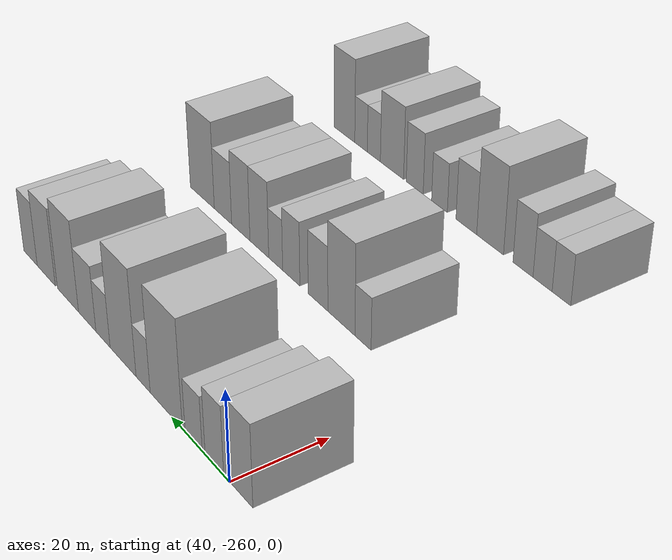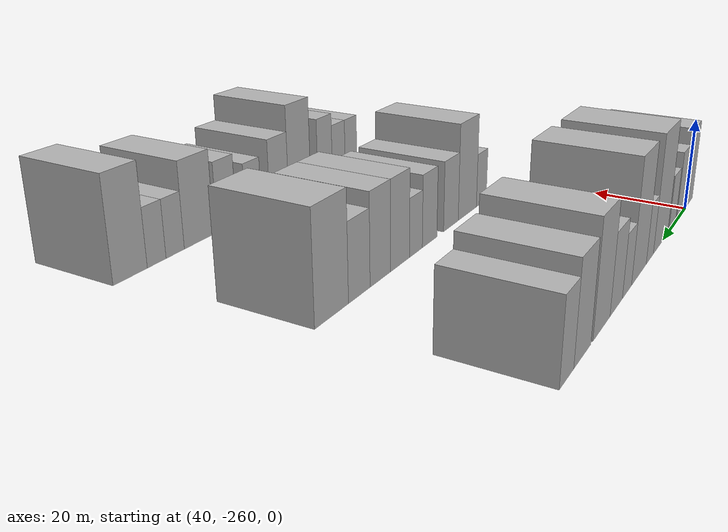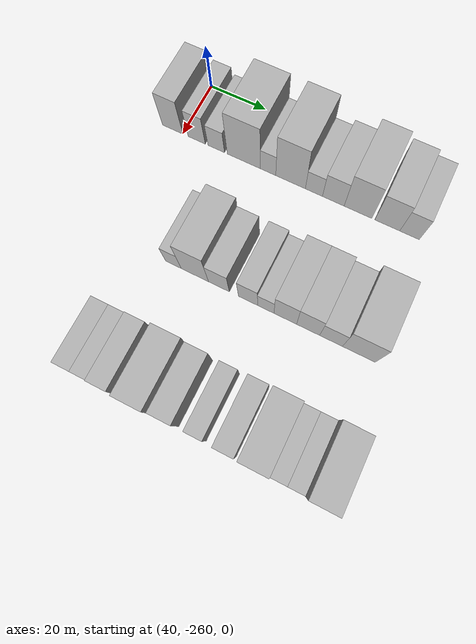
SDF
<sdf version="1.6">
 <world name="default">
  <model name="building_15">
   <static>1</static>
   <pose>50.0000 -263.7044 0 0.000000 0.000000 0.000000</pose>
   <link name="link">
    <pose>0 0 9.00 0 0 0</pose>
    <collision name="collision"><geometry><box><size>20.0000 7.4823 18.0000</size></box></geometry></collision>
    <visual name="visual">
     <cast_shadows>0</cast_shadows>
     <geometry><box><size>20.0000 7.4823 18.0000</size></box></geometry>
     <material>
      <script>
       <uri>model://HANNAS_wall/materials/scripts</uri>
       <uri>model://HANNAS_wall/materials/textures</uri>
       <name>vrc/HANNAS_wall</name>
      </script>
     </material>
    </visual>
   </link>
  </model>
  <model name="building_16">
   <static>1</static>
   <pose>50.0000 -254.8468 0 0.000000 0.000000 0.000000</pose>
   <link name="link">
    <pose>0 0 7.50 0 0 0</pose>
    <collision name="collision"><geometry><box><size>20.0000 6.2329 15.0000</size></box></geometry></collision>
    <visual name="visual">
     <cast_shadows>0</cast_shadows>
     <geometry><box><size>20.0000 6.2329 15.0000</size></box></geometry>
     <material>
      <script>
       <uri>model://HANNAS_wall/materials/scripts</uri>
       <uri>model://HANNAS_wall/materials/textures</uri>
       <name>vrc/HANNAS_wall</name>
      </script>
     </material>
    </visual>
   </link>
  </model>
  <model name="building_17">
   <static>1</static>
   <pose>50.0000 -247.7488 0 0.000000 0.000000 0.000000</pose>
   <link name="link">
    <pose>0 0 6.00 0 0 0</pose>
    <collision name="collision"><geometry><box><size>20.0000 5.9631 12.0000</size></box></geometry></collision>
    <visual name="visual">
     <cast_shadows>0</cast_shadows>
     <geometry><box><size>20.0000 5.9631 12.0000</size></box></geometry>
     <material>
      <script>
       <uri>model://HANNAS_wall/materials/scripts</uri>
       <uri>model://HANNAS_wall/materials/textures</uri>
       <name>vrc/HANNAS_wall</name>
      </script>
     </material>
    </visual>
   </link>
  </model>
  <model name="building_18">
   <static>1</static>
   <pose>50.0000 -237.8741 0 0.000000 0.000000 0.000000</pose>
   <link name="link">
    <pose>0 0 12.00 0 0 0</pose>
    <collision name="collision"><geometry><box><size>20.0000 11.7863 24.0000</size></box></geometry></collision>
    <visual name="visual">
     <cast_shadows>0</cast_shadows>
     <geometry><box><size>20.0000 11.7863 24.0000</size></box></geometry>
     <material>
      <script>
       <uri>model://HANNAS_wall/materials/scripts</uri>
       <uri>model://HANNAS_wall/materials/textures</uri>
       <name>vrc/HANNAS_wall</name>
      </script>
     </material>
    </visual>
   </link>
  </model>
  <model name="building_19">
   <static>1</static>
   <pose>50.0000 -229.2818 0 0.000000 0.000000 0.000000</pose>
   <link name="link">
    <pose>0 0 6.00 0 0 0</pose>
    <collision name="collision"><geometry><box><size>20.0000 5.3983 12.0000</size></box></geometry></collision>
    <visual name="visual">
     <cast_shadows>0</cast_shadows>
     <geometry><box><size>20.0000 5.3983 12.0000</size></box></geometry>
     <material>
      <script>
       <uri>model://HANNAS_wall/materials/scripts</uri>
       <uri>model://HANNAS_wall/materials/textures</uri>
       <name>vrc/HANNAS_wall</name>
      </script>
     </material>
    </visual>
   </link>
  </model>
  <model name="building_20">
   <static>1</static>
   <pose>50.0000 -221.4287 0 0.000000 0.000000 0.000000</pose>
   <link name="link">
    <pose>0 0 12.00 0 0 0</pose>
    <collision name="collision"><geometry><box><size>20.0000 10.3080 24.0000</size></box></geometry></collision>
    <visual name="visual">
     <cast_shadows>0</cast_shadows>
     <geometry><box><size>20.0000 10.3080 24.0000</size></box></geometry>
     <material>
      <script>
       <uri>model://HANNAS_wall/materials/scripts</uri>
       <uri>model://HANNAS_wall/materials/textures</uri>
       <name>vrc/HANNAS_wall</name>
      </script>
     </material>
    </visual>
   </link>
  </model>
  <model name="building_21">
   <static>1</static>
   <pose>50.0000 -213.3474 0 0.000000 0.000000 0.000000</pose>
   <link name="link">
    <pose>0 0 6.00 0 0 0</pose>
    <collision name="collision"><geometry><box><size>20.0000 5.8545 12.0000</size></box></geometry></collision>
    <visual name="visual">
     <cast_shadows>0</cast_shadows>
     <geometry><box><size>20.0000 5.8545 12.0000</size></box></geometry>
     <material>
      <script>
       <uri>model://HANNAS_wall/materials/scripts</uri>
       <uri>model://HANNAS_wall/materials/textures</uri>
       <name>vrc/HANNAS_wall</name>
      </script>
     </material>
    </visual>
   </link>
  </model>
  <model name="building_22">
   <static>1</static>
   <pose>50.0000 -206.7290 0 0.000000 0.000000 0.000000</pose>
   <link name="link">
    <pose>0 0 7.50 0 0 0</pose>
    <collision name="collision"><geometry><box><size>20.0000 7.3823 15.0000</size></box></geometry></collision>
    <visual name="visual">
     <cast_shadows>0</cast_shadows>
     <geometry><box><size>20.0000 7.3823 15.0000</size></box></geometry>
     <material>
      <script>
       <uri>model://HANNAS_wall/materials/scripts</uri>
       <uri>model://HANNAS_wall/materials/textures</uri>
       <name>vrc/HANNAS_wall</name>
      </script>
     </material>
    </visual>
   </link>
  </model>
  <model name="building_23">
   <static>1</static>
   <pose>50.0000 -198.3898 0 0.000000 0.000000 0.000000</pose>
   <link name="link">
    <pose>0 0 10.50 0 0 0</pose>
    <collision name="collision"><geometry><box><size>20.0000 9.2961 21.0000</size></box></geometry></collision>
    <visual name="visual">
     <cast_shadows>0</cast_shadows>
     <geometry><box><size>20.0000 9.2961 21.0000</size></box></geometry>
     <material>
      <script>
       <uri>model://HANNAS_wall/materials/scripts</uri>
       <uri>model://HANNAS_wall/materials/textures</uri>
       <name>vrc/HANNAS_wall</name>
      </script>
     </material>
    </visual>
   </link>
  </model>
  <model name="building_24">
   <static>1</static>
   <pose>50.0000 -188.6085 0 0.000000 0.000000 0.000000</pose>
   <link name="link">
    <pose>0 0 9.00 0 0 0</pose>
    <collision name="collision"><geometry><box><size>20.0000 8.2665 18.0000</size></box></geometry></collision>
    <visual name="visual">
     <cast_shadows>0</cast_shadows>
     <geometry><box><size>20.0000 8.2665 18.0000</size></box></geometry>
     <material>
      <script>
       <uri>model://HANNAS_wall/materials/scripts</uri>
       <uri>model://HANNAS_wall/materials/textures</uri>
       <name>vrc/HANNAS_wall</name>
      </script>
     </material>
    </visual>
   </link>
  </model>
  <model name="building_25">
   <static>1</static>
   <pose>50.0000 -181.2819 0 0.000000 0.000000 0.000000</pose>
   <link name="link">
    <pose>0 0 7.50 0 0 0</pose>
    <collision name="collision"><geometry><box><size>20.0000 6.3867 15.0000</size></box></geometry></collision>
    <visual name="visual">
     <cast_shadows>0</cast_shadows>
     <geometry><box><size>20.0000 6.3867 15.0000</size></box></geometry>
     <material>
      <script>
       <uri>model://HANNAS_wall/materials/scripts</uri>
       <uri>model://HANNAS_wall/materials/textures</uri>
       <name>vrc/HANNAS_wall</name>
      </script>
     </material>
    </visual>
   </link>
  </model>
  <model name="building_95">
   <static>1</static>
   <pose>90.0000 -241.2294 0 0.000000 0.000000 0.000000</pose>
   <link name="link">
    <pose>0 0 6.00 0 0 0</pose>
    <collision name="collision"><geometry><box><size>20.0000 5.3109 12.0000</size></box></geometry></collision>
    <visual name="visual">
     <cast_shadows>0</cast_shadows>
     <geometry><box><size>20.0000 5.3109 12.0000</size></box></geometry>
     <material>
      <script>
       <uri>model://HANNAS_wall/materials/scripts</uri>
       <uri>model://HANNAS_wall/materials/textures</uri>
       <name>vrc/HANNAS_wall</name>
      </script>
     </material>
    </visual>
   </link>
  </model>
  <model name="building_96">
   <static>1</static>
   <pose>90.0000 -233.9532 0 0.000000 0.000000 0.000000</pose>
   <link name="link">
    <pose>0 0 10.50 0 0 0</pose>
    <collision name="collision"><geometry><box><size>20.0000 9.2416 21.0000</size></box></geometry></collision>
    <visual name="visual">
     <cast_shadows>0</cast_shadows>
     <geometry><box><size>20.0000 9.2416 21.0000</size></box></geometry>
     <material>
      <script>
       <uri>model://HANNAS_wall/materials/scripts</uri>
       <uri>model://HANNAS_wall/materials/textures</uri>
       <name>vrc/HANNAS_wall</name>
      </script>
     </material>
    </visual>
   </link>
  </model>
  <model name="building_97">
   <static>1</static>
   <pose>90.0000 -225.8507 0 0.000000 0.000000 0.000000</pose>
   <link name="link">
    <pose>0 0 7.50 0 0 0</pose>
    <collision name="collision"><geometry><box><size>20.0000 6.9634 15.0000</size></box></geometry></collision>
    <visual name="visual">
     <cast_shadows>0</cast_shadows>
     <geometry><box><size>20.0000 6.9634 15.0000</size></box></geometry>
     <material>
      <script>
       <uri>model://HANNAS_wall/materials/scripts</uri>
       <uri>model://HANNAS_wall/materials/textures</uri>
       <name>vrc/HANNAS_wall</name>
      </script>
     </material>
    </visual>
   </link>
  </model>
  <model name="building_98">
   <static>1</static>
   <pose>90.0000 -216.2040 0 0.000000 0.000000 0.000000</pose>
   <link name="link">
    <pose>0 0 7.50 0 0 0</pose>
    <collision name="collision"><geometry><box><size>20.0000 6.3301 15.0000</size></box></geometry></collision>
    <visual name="visual">
     <cast_shadows>0</cast_shadows>
     <geometry><box><size>20.0000 6.3301 15.0000</size></box></geometry>
     <material>
      <script>
       <uri>model://HANNAS_wall/materials/scripts</uri>
       <uri>model://HANNAS_wall/materials/textures</uri>
       <name>vrc/HANNAS_wall</name>
      </script>
     </material>
    </visual>
   </link>
  </model>
  <model name="building_99">
   <static>1</static>
   <pose>90.0000 -210.3976 0 0.000000 0.000000 0.000000</pose>
   <link name="link">
    <pose>0 0 6.00 0 0 0</pose>
    <collision name="collision"><geometry><box><size>20.0000 5.2826 12.0000</size></box></geometry></collision>
    <visual name="visual">
     <cast_shadows>0</cast_shadows>
     <geometry><box><size>20.0000 5.2826 12.0000</size></box></geometry>
     <material>
      <script>
       <uri>model://HANNAS_wall/materials/scripts</uri>
       <uri>model://HANNAS_wall/materials/textures</uri>
       <name>vrc/HANNAS_wall</name>
      </script>
     </material>
    </visual>
   </link>
  </model>
  <model name="building_100">
   <static>1</static>
   <pose>90.0000 -204.1148 0 0.000000 0.000000 0.000000</pose>
   <link name="link">
    <pose>0 0 9.00 0 0 0</pose>
    <collision name="collision"><geometry><box><size>20.0000 7.2831 18.0000</size></box></geometry></collision>
    <visual name="visual">
     <cast_shadows>0</cast_shadows>
     <geometry><box><size>20.0000 7.2831 18.0000</size></box></geometry>
     <material>
      <script>
       <uri>model://HANNAS_wall/materials/scripts</uri>
       <uri>model://HANNAS_wall/materials/textures</uri>
       <name>vrc/HANNAS_wall</name>
      </script>
     </material>
    </visual>
   </link>
  </model>
  <model name="building_101">
   <static>1</static>
   <pose>90.0000 -196.8067 0 0.000000 0.000000 0.000000</pose>
   <link name="link">
    <pose>0 0 9.00 0 0 0</pose>
    <collision name="collision"><geometry><box><size>20.0000 7.3331 18.0000</size></box></geometry></collision>
    <visual name="visual">
     <cast_shadows>0</cast_shadows>
     <geometry><box><size>20.0000 7.3331 18.0000</size></box></geometry>
     <material>
      <script>
       <uri>model://HANNAS_wall/materials/scripts</uri>
       <uri>model://HANNAS_wall/materials/textures</uri>
       <name>vrc/HANNAS_wall</name>
      </script>
     </material>
    </visual>
   </link>
  </model>
  <model name="building_102">
   <static>1</static>
   <pose>90.0000 -189.5590 0 0.000000 0.000000 0.000000</pose>
   <link name="link">
    <pose>0 0 7.50 0 0 0</pose>
    <collision name="collision"><geometry><box><size>20.0000 7.1622 15.0000</size></box></geometry></collision>
    <visual name="visual">
     <cast_shadows>0</cast_shadows>
     <geometry><box><size>20.0000 7.1622 15.0000</size></box></geometry>
     <material>
      <script>
       <uri>model://HANNAS_wall/materials/scripts</uri>
       <uri>model://HANNAS_wall/materials/textures</uri>
       <name>vrc/HANNAS_wall</name>
      </script>
     </material>
    </visual>
   </link>
  </model>
  <model name="building_103">
   <static>1</static>
   <pose>90.0000 -180.8641 0 0.000000 0.000000 0.000000</pose>
   <link name="link">
    <pose>0 0 10.50 0 0 0</pose>
    <collision name="collision"><geometry><box><size>20.0000 10.2277 21.0000</size></box></geometry></collision>
    <visual name="visual">
     <cast_shadows>0</cast_shadows>
     <geometry><box><size>20.0000 10.2277 21.0000</size></box></geometry>
     <material>
      <script>
       <uri>model://HANNAS_wall/materials/scripts</uri>
       <uri>model://HANNAS_wall/materials/textures</uri>
       <name>vrc/HANNAS_wall</name>
      </script>
     </material>
    </visual>
   </link>
  </model>
  <model name="building_174">
   <static>1</static>
   <pose>130.0000 -251.0998 0 0.000000 0.000000 0.000000</pose>
   <link name="link">
    <pose>0 0 6.00 0 0 0</pose>
    <collision name="collision"><geometry><box><size>20.0000 5.5573 12.0000</size></box></geometry></collision>
    <visual name="visual">
     <cast_shadows>0</cast_shadows>
     <geometry><box><size>20.0000 5.5573 12.0000</size></box></geometry>
     <material>
      <script>
       <uri>model://HANNAS_wall/materials/scripts</uri>
       <uri>model://HANNAS_wall/materials/textures</uri>
       <name>vrc/HANNAS_wall</name>
      </script>
     </material>
    </visual>
   </link>
  </model>
  <model name="building_175">
   <static>1</static>
   <pose>130.0000 -245.4089 0 0.000000 0.000000 0.000000</pose>
   <link name="link">
    <pose>0 0 6.00 0 0 0</pose>
    <collision name="collision"><geometry><box><size>20.0000 5.8247 12.0000</size></box></geometry></collision>
    <visual name="visual">
     <cast_shadows>0</cast_shadows>
     <geometry><box><size>20.0000 5.8247 12.0000</size></box></geometry>
     <material>
      <script>
       <uri>model://HANNAS_wall/materials/scripts</uri>
       <uri>model://HANNAS_wall/materials/textures</uri>
       <name>vrc/HANNAS_wall</name>
      </script>
     </material>
    </visual>
   </link>
  </model>
  <model name="building_176">
   <static>1</static>
   <pose>130.0000 -239.3505 0 0.000000 0.000000 0.000000</pose>
   <link name="link">
    <pose>0 0 7.50 0 0 0</pose>
    <collision name="collision"><geometry><box><size>20.0000 6.2920 15.0000</size></box></geometry></collision>
    <visual name="visual">
     <cast_shadows>0</cast_shadows>
     <geometry><box><size>20.0000 6.2920 15.0000</size></box></geometry>
     <material>
      <script>
       <uri>model://HANNAS_wall/materials/scripts</uri>
       <uri>model://HANNAS_wall/materials/textures</uri>
       <name>vrc/HANNAS_wall</name>
      </script>
     </material>
    </visual>
   </link>
  </model>
  <model name="building_177">
   <static>1</static>
   <pose>130.0000 -228.8049 0 0.000000 0.000000 0.000000</pose>
   <link name="link">
    <pose>0 0 10.50 0 0 0</pose>
    <collision name="collision"><geometry><box><size>20.0000 8.7993 21.0000</size></box></geometry></collision>
    <visual name="visual">
     <cast_shadows>0</cast_shadows>
     <geometry><box><size>20.0000 8.7993 21.0000</size></box></geometry>
     <material>
      <script>
       <uri>model://HANNAS_wall/materials/scripts</uri>
       <uri>model://HANNAS_wall/materials/textures</uri>
       <name>vrc/HANNAS_wall</name>
      </script>
     </material>
    </visual>
   </link>
  </model>
  <model name="building_178">
   <static>1</static>
   <pose>130.0000 -220.8939 0 0.000000 0.000000 0.000000</pose>
   <link name="link">
    <pose>0 0 7.50 0 0 0</pose>
    <collision name="collision"><geometry><box><size>20.0000 7.0227 15.0000</size></box></geometry></collision>
    <visual name="visual">
     <cast_shadows>0</cast_shadows>
     <geometry><box><size>20.0000 7.0227 15.0000</size></box></geometry>
     <material>
      <script>
       <uri>model://HANNAS_wall/materials/scripts</uri>
       <uri>model://HANNAS_wall/materials/textures</uri>
       <name>vrc/HANNAS_wall</name>
      </script>
     </material>
    </visual>
   </link>
  </model>
  <model name="building_179">
   <static>1</static>
   <pose>130.0000 -211.6103 0 0.000000 0.000000 0.000000</pose>
   <link name="link">
    <pose>0 0 6.00 0 0 0</pose>
    <collision name="collision"><geometry><box><size>20.0000 5.5445 12.0000</size></box></geometry></collision>
    <visual name="visual">
     <cast_shadows>0</cast_shadows>
     <geometry><box><size>20.0000 5.5445 12.0000</size></box></geometry>
     <material>
      <script>
       <uri>model://HANNAS_wall/materials/scripts</uri>
       <uri>model://HANNAS_wall/materials/textures</uri>
       <name>vrc/HANNAS_wall</name>
      </script>
     </material>
    </visual>
   </link>
  </model>
  <model name="building_180">
   <static>1</static>
   <pose>130.0000 -202.7523 0 0.000000 0.000000 0.000000</pose>
   <link name="link">
    <pose>0 0 7.50 0 0 0</pose>
    <collision name="collision"><geometry><box><size>20.0000 6.1714 15.0000</size></box></geometry></collision>
    <visual name="visual">
     <cast_shadows>0</cast_shadows>
     <geometry><box><size>20.0000 6.1714 15.0000</size></box></geometry>
     <material>
      <script>
       <uri>model://HANNAS_wall/materials/scripts</uri>
       <uri>model://HANNAS_wall/materials/textures</uri>
       <name>vrc/HANNAS_wall</name>
      </script>
     </material>
    </visual>
   </link>
  </model>
  <model name="building_181">
   <static>1</static>
   <pose>130.0000 -194.2880 0 0.000000 0.000000 0.000000</pose>
   <link name="link">
    <pose>0 0 9.00 0 0 0</pose>
    <collision name="collision"><geometry><box><size>20.0000 8.7572 18.0000</size></box></geometry></collision>
    <visual name="visual">
     <cast_shadows>0</cast_shadows>
     <geometry><box><size>20.0000 8.7572 18.0000</size></box></geometry>
     <material>
      <script>
       <uri>model://HANNAS_wall/materials/scripts</uri>
       <uri>model://HANNAS_wall/materials/textures</uri>
       <name>vrc/HANNAS_wall</name>
      </script>
     </material>
    </visual>
   </link>
  </model>
  <model name="building_182">
   <static>1</static>
   <pose>130.0000 -187.3781 0 0.000000 0.000000 0.000000</pose>
   <link name="link">
    <pose>0 0 6.00 0 0 0</pose>
    <collision name="collision"><geometry><box><size>20.0000 5.0626 12.0000</size></box></geometry></collision>
    <visual name="visual">
     <cast_shadows>0</cast_shadows>
     <geometry><box><size>20.0000 5.0626 12.0000</size></box></geometry>
     <material>
      <script>
       <uri>model://HANNAS_wall/materials/scripts</uri>
       <uri>model://HANNAS_wall/materials/textures</uri>
       <name>vrc/HANNAS_wall</name>
      </script>
     </material>
    </visual>
   </link>
  </model>
  <model name="building_183">
   <static>1</static>
   <pose>130.0000 -182.3785 0 0.000000 0.000000 0.000000</pose>
   <link name="link">
    <pose>0 0 6.00 0 0 0</pose>
    <collision name="collision"><geometry><box><size>20.0000 4.9367 12.0000</size></box></geometry></collision>
    <visual name="visual">
     <cast_shadows>0</cast_shadows>
     <geometry><box><size>20.0000 4.9367 12.0000</size></box></geometry>
     <material>
      <script>
       <uri>model://HANNAS_wall/materials/scripts</uri>
       <uri>model://HANNAS_wall/materials/textures</uri>
       <name>vrc/HANNAS_wall</name>
      </script>
     </material>
    </visual>
   </link>
  </model>
  <model name="building_184">
   <static>1</static>
   <pose>130.0000 -175.6839 0 0.000000 0.000000 0.000000</pose>
   <link name="link">
    <pose>0 0 10.50 0 0 0</pose>
    <collision name="collision"><geometry><box><size>20.0000 8.4525 21.0000</size></box></geometry></collision>
    <visual name="visual">
     <cast_shadows>0</cast_shadows>
     <geometry><box><size>20.0000 8.4525 21.0000</size></box></geometry>
     <material>
      <script>
       <uri>model://HANNAS_wall/materials/scripts</uri>
       <uri>model://HANNAS_wall/materials/textures</uri>
       <name>vrc/HANNAS_wall</name>
      </script>
     </material>
    </visual>
   </link>
  </model>
 </world>
</sdf>
